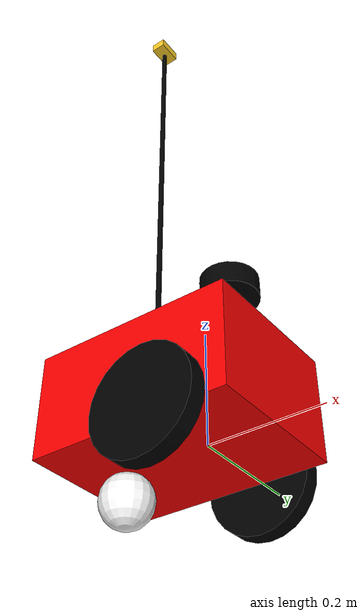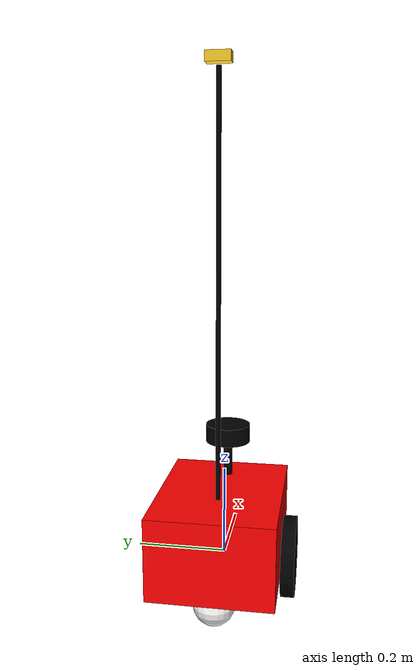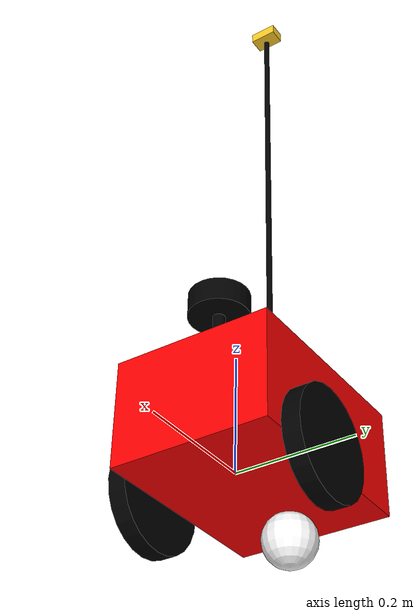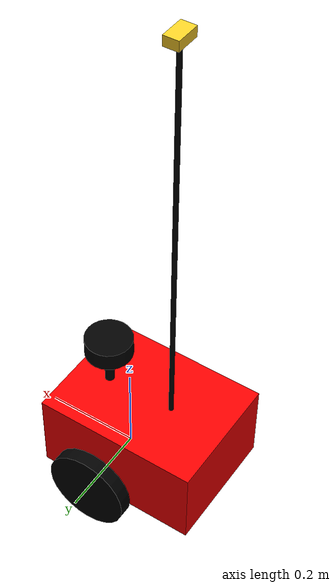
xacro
<?xml version="1.0"?>

<robot name="pioneerdx3"
	xmlns:sensor="http://playerstage.sourceforge.net/gazebo/xmlschema/#sensor"
	xmlns:controller="http://playerstage.sourceforge.net/gazebo/xmlschema/#controller"
	xmlns:interface="http://playerstage.sourceforge.net/gazebo/xmlschema/#interface"
	xmlns:xacro="http://ros.org/wiki/xacro">

	<xacro:include filename="pioneerdx3_body.xacro"/>
	<xacro:include filename="depth_camera.xacro"/>
	<xacro:include filename="lidar.xacro"/>
	<xacro:include filename="gazebo_control.xacro"/>
</robot>

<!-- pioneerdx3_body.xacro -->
<robot xmlns:xacro="http://www.ros.org/wiki/xacro" >

    <xacro:include filename="inertial_macros.xacro"/>

    <xacro:property name="chassis_length" value="0.35"/>
    <xacro:property name="chassis_width" value="0.267"/>
    <xacro:property name="chassis_height" value="0.18"/>
    <xacro:property name="chassis_mass" value="1.0"/>
    <xacro:property name="wheel_radius" value="0.09"/>
    <xacro:property name="wheel_thickness" value="0.03"/>
    <xacro:property name="wheel_mass" value="0.05"/>
    <xacro:property name="wheel_offset_x" value="0.226"/>
    <xacro:property name="wheel_offset_y" value="0.1485"/>
    <xacro:property name="wheel_offset_z" value="0.01"/>
    <xacro:property name="caster_wheel_radius" value="0.045"/>
    <xacro:property name="caster_wheel_mass" value="0.01"/>
    <xacro:property name="caster_wheel_offset_x" value="0.075"/>
    <xacro:property name="caster_wheel_offset_z" value="${wheel_offset_z - wheel_radius + caster_wheel_radius}"/>

    <material name="white">
        <color rgba="1 1 1 1" />
    </material>

    <material name="orange">
        <color rgba="1 0.3 0.1 1"/>
    </material>

    <material name="blue">
        <color rgba="0.2 0.2 1 1"/>
    </material>

    <material name="black">
        <color rgba="0 0 0 1"/>
    </material>

    <material name="red">
        <color rgba="1 0 0 1"/>
    </material>

    <!-- BASE LINK -->

    <link name="base_link">

    </link>

    <!-- BASE_FOOTPRINT LINK -->

    <joint name="base_footprint_joint" type="fixed">
        <parent link="base_link"/>
        <child link="base_footprint"/>
        <origin xyz="0 0 0" rpy="0 0 0"/>
    </joint>

    <link name="base_footprint">
    </link>

    <!-- CHASSIS LINK -->

    <joint name="chassis_joint" type="fixed">
        <parent link="base_link"/>
        <child link="chassis"/>
        <origin xyz="${-wheel_offset_x} 0 ${-wheel_offset_z}"/>
    </joint>

    <link name="chassis">
        <visual>
            <origin xyz="${chassis_length/2} 0 ${chassis_height/2}"/>
            <geometry>
                <box size="${chassis_length} ${chassis_width} ${chassis_height}"/>
            </geometry>
            <material name="red"/>
        </visual>
        <collision>
            <origin xyz="${chassis_length/2} 0 ${chassis_height/2}"/>
            <geometry>
                <box size="${chassis_length} ${chassis_width} ${chassis_height}"/>
            </geometry>
        </collision>
        <xacro:inertial_box mass="0.5" x="${chassis_length}" y="${chassis_width}" z="${chassis_height}">
            <origin xyz="${chassis_length/2} 0 ${chassis_height/2}" rpy="0 0 0"/>
        </xacro:inertial_box>
    </link>

    <gazebo reference="chassis">
        <material>Gazebo/Red</material>
    </gazebo>

    <!-- LEFT WHEEL LINK -->

    <joint name="left_wheel_joint" type="fixed">
        <parent link="base_link"/>
        <child link="left_wheel"/>
        <origin xyz="0 ${wheel_offset_y} 0" rpy="-${pi/2} 0 0" />
    </joint>

    <link name="left_wheel">
        <visual>
            <geometry>
                <cylinder radius="${wheel_radius}" length="${wheel_thickness}"/>
            </geometry>
            <material name="black"/>
        </visual>
        <collision>
            <geometry>
                <sphere radius="${wheel_radius}"/>
            </geometry>
        </collision>
        <xacro:inertial_cylinder mass="${wheel_mass}" length="${wheel_thickness}" radius="${wheel_radius}">
            <origin xyz="0 0 0" rpy="0 0 0"/>
        </xacro:inertial_cylinder>
    </link>

    <gazebo reference="left_wheel">
        <material>Gazebo/Black</material>
    </gazebo>

    <!-- RIGHT WHEEL LINK -->

    <joint name="right_wheel_joint" type="fixed">
        <parent link="base_link"/>
        <child link="right_wheel"/>
        <origin xyz="0 ${-wheel_offset_y} 0" rpy="${pi/2} 0 0" />
    </joint>

    <link name="right_wheel">
        <visual>
            <geometry>
                <cylinder radius="${wheel_radius}" length="${wheel_thickness}"/>
            </geometry>
            <material name="black"/>
        </visual>
        <collision>
            <geometry>
                <sphere radius="${wheel_radius}"/>
            </geometry>
        </collision>
        <xacro:inertial_cylinder mass="${wheel_mass}" length="${wheel_thickness}" radius="${wheel_radius}">
            <origin xyz="0 0 0" rpy="0 0 0"/>
        </xacro:inertial_cylinder>
    </link>

    <gazebo reference="right_wheel">
        <material>Gazebo/Black</material>
    </gazebo>

    <!-- CASTER WHEEL LINK -->

    <joint name="caster_wheel_joint" type="fixed">
        <parent link="chassis"/>
        <child link="caster_wheel"/>
        <origin xyz="${caster_wheel_offset_x} 0 ${caster_wheel_offset_z}"/>
    </joint>

    <link name="caster_wheel">
        <visual>
            <geometry>
                <sphere radius="${caster_wheel_radius}"/>
            </geometry>
            <material name="white"/>
        </visual>
        <collision>
            <geometry>
                <sphere radius="${caster_wheel_radius}"/>
            </geometry>
        </collision>
        <xacro:inertial_sphere mass="${caster_wheel_mass}" radius="${caster_wheel_radius}">
            <origin xyz="0 0 0" rpy="0 0 0"/>
        </xacro:inertial_sphere>
    </link>

    <gazebo reference="caster_wheel">
        <material>Gazebo/White</material>
        <mu1 value="0.001"/>
        <mu2 value="0.001"/>
    </gazebo>

</robot>

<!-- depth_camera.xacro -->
<robot xmlns:xacro="http://www.ros.org/wiki/xacro">

    <material name="HubcapYellow">
		<color rgba="1.0 0.811 0.151 1.0"/>
	</material>

    <joint name="camera_joint" type="fixed">
        <parent link="base_link"/>
        <child link="camera_link"/>
        <origin xyz="-0.1 0 1.05" rpy="0 0 0"/>
    </joint>

    <link name="camera_link">
        <visual>
            <geometry>
                <box size="0.03 0.05 0.02"/>
            </geometry>
            <material name="HubcapYellow"/>
        </visual>
        <visual>
            <origin xyz="0 0 -0.45"/>
            <geometry>
                <cylinder radius="0.005" length="0.87"/>
            </geometry>
            <material name="black"/>
        </visual>
        <collision>
            <origin xyz="0 0 -0.44"/>
            <geometry>
                <cylinder radius="0.03" length="0.9"/>
            </geometry>
        </collision>
    </link>

    <joint name="camera_optical_joint" type="fixed">
        <parent link="camera_link"/>
        <child link="camera_link_optical"/>
        <origin xyz="0 0 0" rpy="${-pi/2} 0 ${-pi/2}"/>
    </joint>

    <link name="camera_link_optical"></link>

    <gazebo reference="camera_link">
        <material>Gazebo/Yellow</material>

        <sensor name="camera" type="depth">
            <pose> 0 0 0 0 0 0 </pose>
            <visualize>true</visualize>
            <update_rate>10</update_rate>
            <camera>
                <horizontal_fov>1.089</horizontal_fov>
                <image>
                    <format>B8G8R8</format>
                    <width>640</width>
                    <height>480</height>
                </image>
                <clip>
                    <near>0.05</near>
                    <far>8.0</far>
                </clip>
            </camera>
            <plugin name="camera_controller" filename="libgazebo_ros_camera.so">
                <frame_name>camera_link_optical</frame_name>
                <min_depth>0.1</min_depth>
                <max_depth>100.0</max_depth>
            </plugin>
        </sensor>
    </gazebo>

</robot>

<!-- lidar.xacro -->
<robot xmlns:xacro="http://www.ros.org/wiki/xacro" >

<xacro:include filename="inertial_macros.xacro"/>

    <joint name="laser_joint" type="fixed">
        <parent link="base_link"/>
        <child link="laser_link"/>
        <origin xyz="0.05 0 0.27" rpy="0 0 0"/>
    </joint>

    <link name="laser_link">
        <visual>
            <geometry>
                <cylinder radius="0.05" length="0.04"/>
            </geometry>
            <material name="black"/>
        </visual>
        <visual>
            <origin xyz="0 0 -0.05"/>
            <geometry>
                <cylinder radius="0.01" length="0.1"/>
            </geometry>
            <material name="black"/>
        </visual>
        <collision>
            <origin xyz="0 0 -0.05"/>
            <geometry>
                <cylinder radius="0.05" length="0.1"/>
            </geometry>
        </collision>
        <xacro:inertial_cylinder mass="0.1" length="0.04" radius="0.05">
            <origin xyz="0 0 0" rpy="0 0 0"/>
        </xacro:inertial_cylinder>
    </link>

    <gazebo reference="laser_link">
        <material>Gazebo/Black</material>

        <sensor name="laser" type="ray">
            <pose> 0 0 0 0 0 0 </pose>
            <visualize>false</visualize>
            <update_rate>10</update_rate>
            <ray>
                <scan>
                    <horizontal>
                        <samples>360</samples>
                        <min_angle>-3.14</min_angle>
                        <max_angle>3.14</max_angle>
                    </horizontal>
                </scan>
                <range>
                    <min>0.3</min>
                    <max>12</max>
                </range>
            </ray>
            <plugin name="laser_controller" filename="libgazebo_ros_ray_sensor.so">
                <ros>
                    <argument>~/out:=scan</argument>
                </ros>
                <output_type>sensor_msgs/LaserScan</output_type>
                <frame_name>laser_frame</frame_name>
            </plugin>
        </sensor>
    </gazebo>

</robot>
